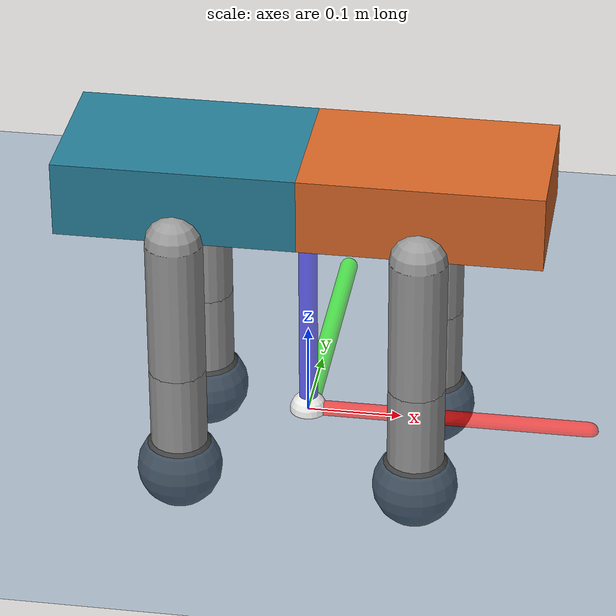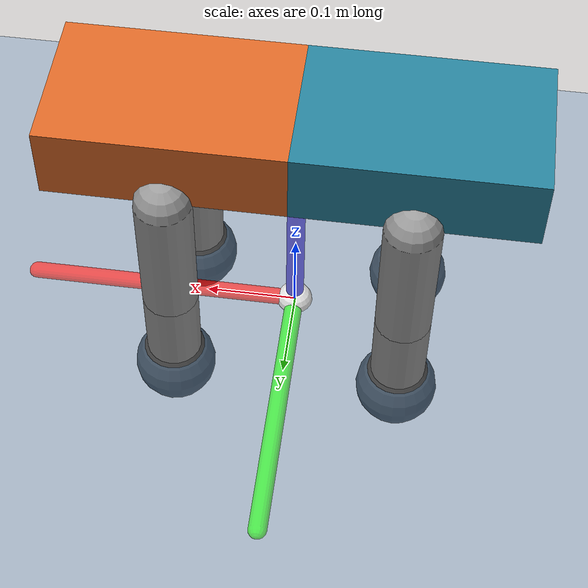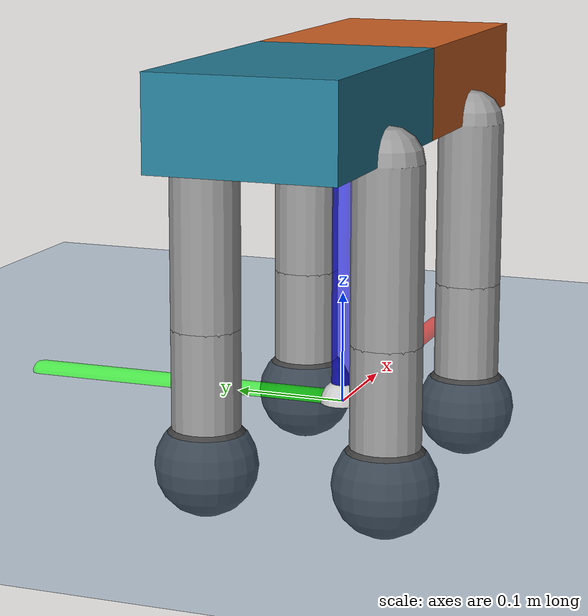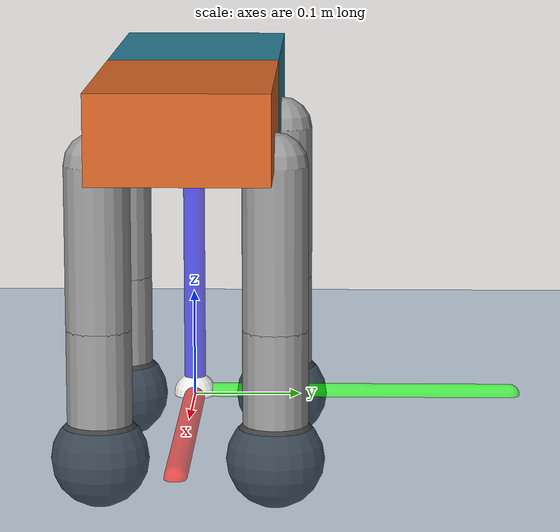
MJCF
<mujoco model="quadruped">
  <compiler angle="degree"/>

  <option integrator="RK4" timestep="0.001" cone="elliptic">
    <flag contact="enable"/>
  </option>

  <!-- ====== 纹理和材质 ====== -->
  <asset>
    <!-- 天空渐变背景 -->
    <texture type="skybox" builtin="gradient" rgb1=".3 .5 .7" rgb2="0 0 0" width="512" height="512"/>
    <!-- 蓝白棋盘格纹理 -->
    <texture name="grid" type="2d" builtin="checker" width="512" height="512"
             rgb1=".2 .4 .6" rgb2=".4 .6 .8"/>
    <material name="grid" texture="grid" texrepeat="1 1" texuniform="true" reflectance="0"/>
  </asset>

  <default>
    <geom friction="1.0 0.02 0.001" solref="0.01 1" solimp="0.9 0.95 0.001"/>
    <joint damping="1.0" armature="0.002"/>
    <default class="leg">
      <geom type="capsule" size="0.03" rgba="0.6 0.6 0.6 1" contype="0" conaffinity="0" density="350"/>
    </default>
    <default class="foot">
      <geom type="sphere" size="0.045" rgba="0.25 0.25 0.25 1"
            friction="1.4 0.04 0.002" condim="4" contype="1" conaffinity="1"
            density="500" solref="0.008 1" solimp="0.95 0.99 0.001"/>
    </default>
  </default>

  <!-- ====== Actuator: 9 position-controlled joints ====== -->
  <actuator>
    <position name="torso_hinge_act"  joint="torso_hinge"  kp="150" kv="3"/>
    <position name="fl_hip_flex_act"  joint="fl_hip_flex"  kp="80"  kv="1.5"/>
    <position name="fl_knee_act"      joint="fl_knee"      kp="60"  kv="1"/>
    <position name="fr_hip_flex_act"  joint="fr_hip_flex"  kp="80"  kv="1.5"/>
    <position name="fr_knee_act"      joint="fr_knee"      kp="60"  kv="1"/>
    <position name="hl_hip_flex_act"  joint="hl_hip_flex"  kp="80"  kv="1.5"/>
    <position name="hl_knee_act"      joint="hl_knee"      kp="60"  kv="1"/>
    <position name="hr_hip_flex_act"  joint="hr_hip_flex"  kp="80"  kv="1.5"/>
    <position name="hr_knee_act"      joint="hr_knee"      kp="60"  kv="1"/>
  </actuator>

  <worldbody>
    <!-- 世界原点坐标轴 (红X 绿Y 蓝Z) -->
    <geom name="axis_x" type="capsule" size="0.01" fromto="0 0 0 0.3 0 0" rgba="1 0 0 0.6" contype="0" conaffinity="0" group="2"/>
    <geom name="axis_y" type="capsule" size="0.01" fromto="0 0 0 0 0.3 0" rgba="0 1 0 0.6" contype="0" conaffinity="0" group="2"/>
    <geom name="axis_z" type="capsule" size="0.01" fromto="0 0 0 0 0 0.3" rgba="0 0 1 0.6" contype="0" conaffinity="0" group="2"/>
    <!-- 原点小球 -->
    <geom name="origin" type="sphere" size="0.02" rgba="1 1 1 0.8" contype="0" conaffinity="0" group="2"/>

    <!-- 聚光灯跟随躯干 -->
    <light name="spotlight" mode="targetbodycom" target="torso_front"
           diffuse="0.9 0.9 0.9" specular="0.3 0.3 0.3" pos="0 -4 4" cutoff="100"/>

    <!-- 地面：碰撞体 -->
    <geom name="floor" type="plane" size="0 0 .05" material="grid"
          friction="1.2 0.03 0.001"
          condim="3" contype="1" conaffinity="1"/>
    <!-- 地面：视觉层（防止 z-fighting） -->
    <geom name="floor_visual" type="plane" size="0 0 .05" pos="0 0 -0.001"
          material="grid" condim="3" contype="0" conaffinity="0" group="1"/>

    <!-- 躯干前半段 (带 freejoint) -->
    <body name="torso_front" pos="0.125 0 0.28">
      <freejoint name="torso_free"/>
      <geom type="box" size="0.125 0.08 0.04" rgba="0.85 0.4 0.15 1"
            density="250" contype="0" conaffinity="0"/>

      <!-- ========== 前左腿 ========== -->
      <body name="fl_abd" pos="0.0 0.08 -0.04">
        <geom type="sphere" size="0.005" rgba="0 0 0 0" mass="0.001"/>
        <body name="fl_upper" pos="0 0 0">
          <joint name="fl_hip_flex" type="hinge" axis="0 1 0" range="-60 60" damping="1.5"/>
          <geom class="leg" fromto="0 0 0 0 0 -0.15"/>
          <body name="fl_lower" pos="0 0 -0.15">
            <joint name="fl_knee" type="hinge" axis="0 1 0" range="-120 120" damping="1.2"/>
            <geom class="leg" fromto="0 0 0 0 0 -0.12"/>
            <geom name="fl_lower" class="foot" pos="0 0 -0.12"/>
          </body>
        </body>
      </body>

      <!-- ========== 前右腿 ========== -->
      <body name="fr_abd" pos="0.0 -0.08 -0.04">
        <geom type="sphere" size="0.005" rgba="0 0 0 0" mass="0.001"/>
        <body name="fr_upper" pos="0 0 0">
          <joint name="fr_hip_flex" type="hinge" axis="0 1 0" range="-60 60" damping="1.5"/>
          <geom class="leg" fromto="0 0 0 0 0 -0.15"/>
          <body name="fr_lower" pos="0 0 -0.15">
            <joint name="fr_knee" type="hinge" axis="0 1 0" range="-120 120" damping="1.2"/>
            <geom class="leg" fromto="0 0 0 0 0 -0.12"/>
            <geom name="fr_lower" class="foot" pos="0 0 -0.12"/>
          </body>
        </body>
      </body>

      <!-- ====== 躯干后半段 (铰接在前半段后端) ====== -->
      <body name="torso_rear" pos="-0.125 0 0">
        <joint name="torso_hinge" type="hinge" axis="0 1 0" range="-180 0" armature="0.01" damping="3.0"/>
        <geom type="box" size="0.125 0.08 0.04" pos="-0.125 0 0" rgba="0.15 0.5 0.6 1"
              density="250" contype="0" conaffinity="0"/>

        <!-- ========== 后左腿 ========== -->
        <body name="hl_abd" pos="-0.125 0.08 -0.04">
          <geom type="sphere" size="0.005" rgba="0 0 0 0" mass="0.001"/>
          <body name="hl_upper" pos="0 0 0">
            <joint name="hl_hip_flex" type="hinge" axis="0 1 0" range="-60 60" damping="1.5"/>
            <geom class="leg" fromto="0 0 0 0 0 -0.15"/>
            <body name="hl_lower" pos="0 0 -0.15">
              <joint name="hl_knee" type="hinge" axis="0 1 0" range="-120 120" damping="1.2"/>
              <geom class="leg" fromto="0 0 0 0 0 -0.12"/>
              <geom name="hl_lower" class="foot" pos="0 0 -0.12"/>
            </body>
          </body>
        </body>

        <!-- ========== 后右腿 ========== -->
        <body name="hr_abd" pos="-0.125 -0.08 -0.04">
          <geom type="sphere" size="0.005" rgba="0 0 0 0" mass="0.001"/>
          <body name="hr_upper" pos="0 0 0">
            <joint name="hr_hip_flex" type="hinge" axis="0 1 0" range="-60 60" damping="1.5"/>
            <geom class="leg" fromto="0 0 0 0 0 -0.15"/>
            <body name="hr_lower" pos="0 0 -0.15">
              <joint name="hr_knee" type="hinge" axis="0 1 0" range="-120 120" damping="1.2"/>
              <geom class="leg" fromto="0 0 0 0 0 -0.12"/>
              <geom name="hr_lower" class="foot" pos="0 0 -0.12"/>
            </body>
          </body>
        </body>
      </body>
    </body>
  </worldbody>
</mujoco>
